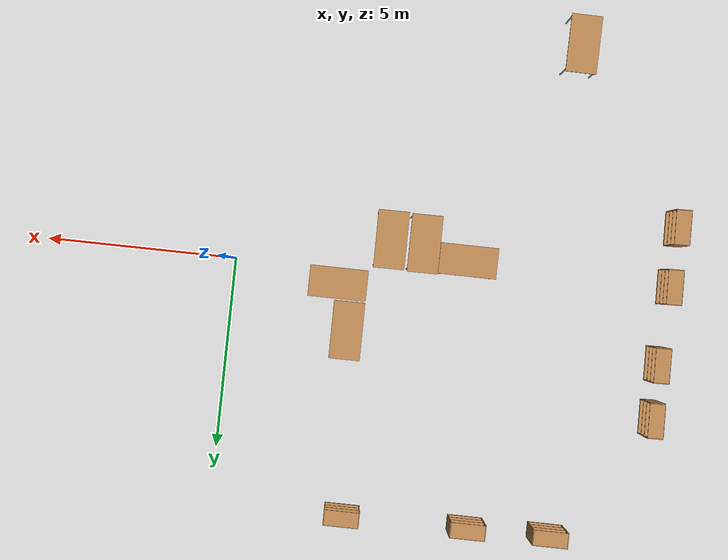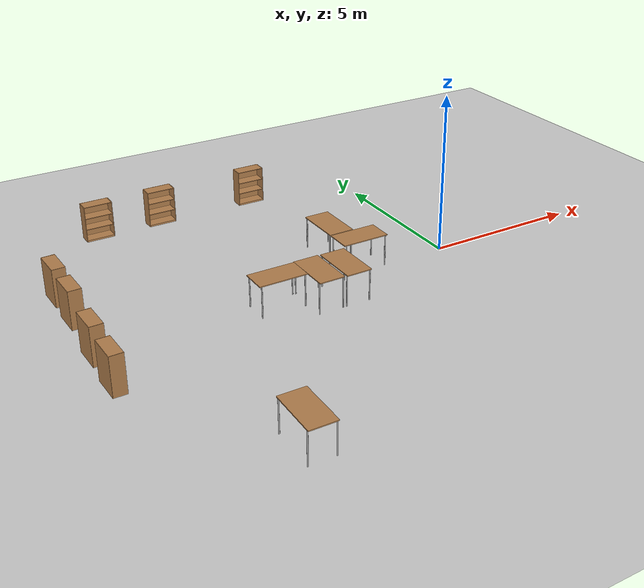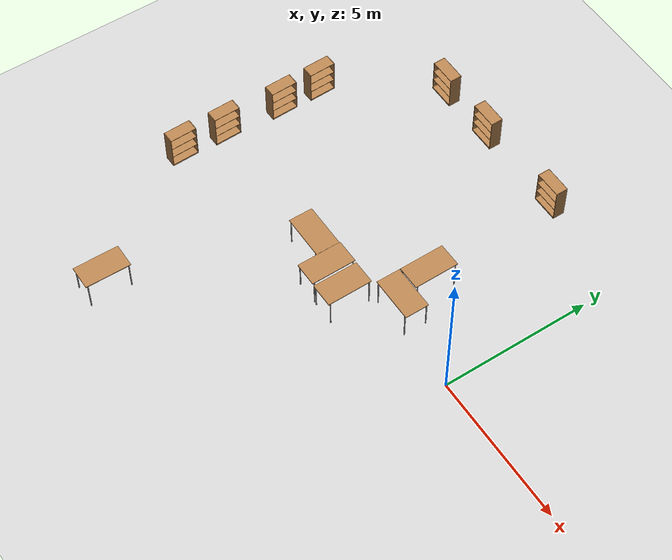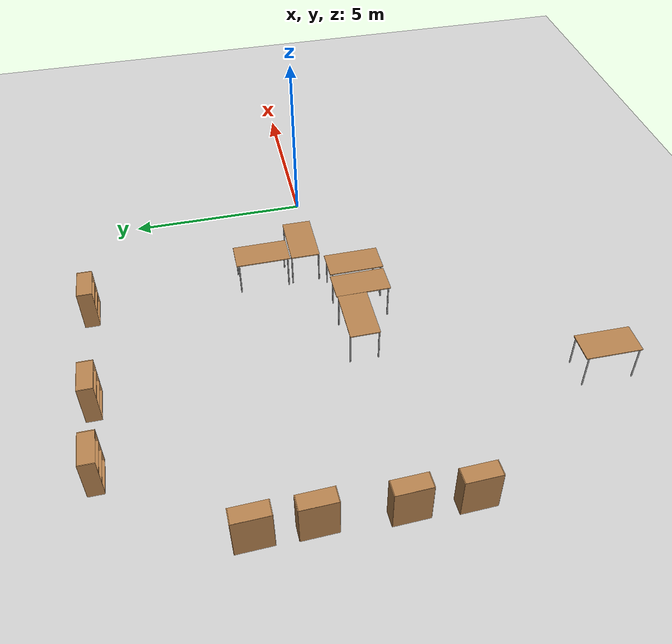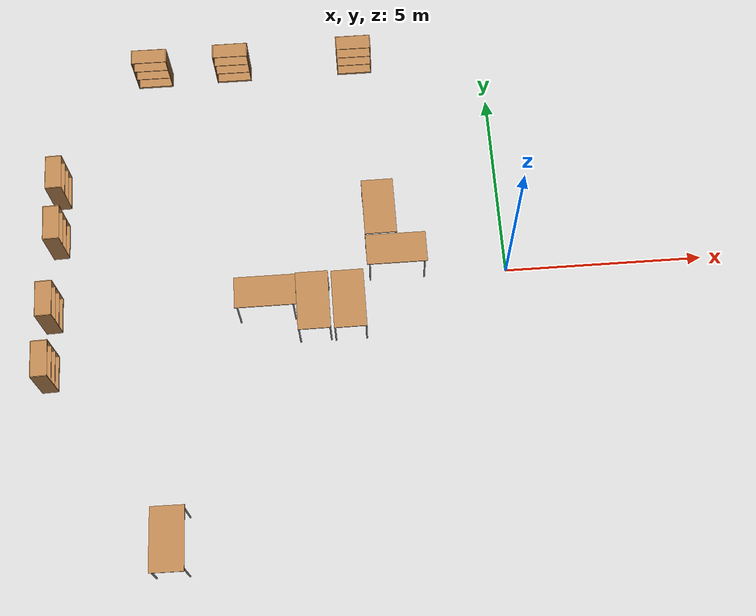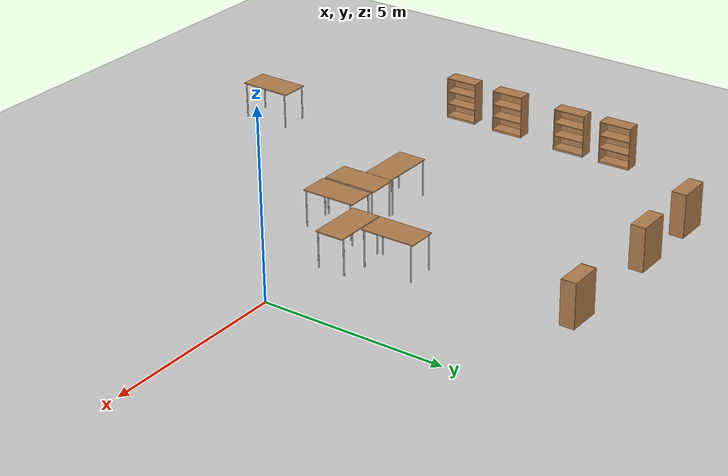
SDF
<sdf version="1.7">
 <world name="default">
  <model name="ground_plane">
   <static>1</static>
   <link name="link">
    <collision name="collision">
     <geometry><plane><normal>0 0 1</normal><size>100 100</size></plane></geometry>
     <surface><friction><ode><mu>100</mu><mu2>50</mu2></ode></friction></surface>
    </collision>
    <visual name="visual">
     <cast_shadows>0</cast_shadows>
     <geometry><plane><normal>0 0 1</normal><size>100 100</size></plane></geometry>
     <material>
      <script><uri>file://media/materials/scripts/gazebo.material</uri><name>Gazebo/Grey</name></script>
     </material>
    </visual>
   </link>
  </model>
  <model name="bookshelf">
   <static>1</static>
   <link name="link">
    <inertial><mass>1</mass></inertial>
    <collision name="back">
     <pose>0 0.005 0.6 0 -0 0</pose>
     <geometry><box><size>0.9 0.01 1.2</size></box></geometry>
    </collision>
    <visual name="visual1">
     <pose>0 0.005 0.6 0 -0 0</pose>
     <geometry><box><size>0.9 0.01 1.2</size></box></geometry>
     <material>
      <script><uri>file://media/materials/scripts/gazebo.material</uri><name>Gazebo/Wood</name></script>
     </material>
    </visual>
    <collision name="left_side">
     <pose>0.45 -0.195 0.6 0 -0 0</pose>
     <geometry><box><size>0.02 0.4 1.2</size></box></geometry>
    </collision>
    <visual name="visual2">
     <pose>0.45 -0.195 0.6 0 -0 0</pose>
     <geometry><box><size>0.02 0.4 1.2</size></box></geometry>
     <material>
      <script><uri>file://media/materials/scripts/gazebo.material</uri><name>Gazebo/Wood</name></script>
     </material>
    </visual>
    <collision name="right_side">
     <pose>-0.45 -0.195 0.6 0 -0 0</pose>
     <geometry><box><size>0.02 0.4 1.2</size></box></geometry>
    </collision>
    <visual name="visual3">
     <pose>-0.45 -0.195 0.6 0 -0 0</pose>
     <geometry><box><size>0.02 0.4 1.2</size></box></geometry>
     <material>
      <script><uri>file://media/materials/scripts/gazebo.material</uri><name>Gazebo/Wood</name></script>
     </material>
    </visual>
    <collision name="bottom">
     <pose>0 -0.195 0.03 0 -0 0</pose>
     <geometry><box><size>0.88 0.4 0.06</size></box></geometry>
    </collision>
    <visual name="visual4">
     <pose>0 -0.195 0.03 0 -0 0</pose>
     <geometry><box><size>0.88 0.4 0.06</size></box></geometry>
     <material>
      <script><uri>file://media/materials/scripts/gazebo.material</uri><name>Gazebo/Wood</name></script>
     </material>
    </visual>
    <collision name="top">
     <pose>0 -0.195 1.19 0 -0 0</pose>
     <geometry><box><size>0.88 0.4 0.02</size></box></geometry>
    </collision>
    <visual name="visual5">
     <pose>0 -0.195 1.19 0 -0 0</pose>
     <geometry><box><size>0.88 0.4 0.02</size></box></geometry>
     <material>
      <script><uri>file://media/materials/scripts/gazebo.material</uri><name>Gazebo/Wood</name></script>
     </material>
    </visual>
    <collision name="low_shelf">
     <pose>0 -0.195 0.43 0 -0 0</pose>
     <geometry><box><size>0.88 0.4 0.02</size></box></geometry>
    </collision>
    <visual name="visual6">
     <pose>0 -0.195 0.43 0 -0 0</pose>
     <geometry><box><size>0.88 0.4 0.02</size></box></geometry>
     <material>
      <script><uri>file://media/materials/scripts/gazebo.material</uri><name>Gazebo/Wood</name></script>
     </material>
    </visual>
    <collision name="high_shelf">
     <pose>0 -0.195 0.8 0 -0 0</pose>
     <geometry><box><size>0.88 0.4 0.02</size></box></geometry>
    </collision>
    <visual name="visual7">
     <pose>0 -0.195 0.8 0 -0 0</pose>
     <geometry><box><size>0.88 0.4 0.02</size></box></geometry>
     <material>
      <script><uri>file://media/materials/scripts/gazebo.material</uri><name>Gazebo/Wood</name></script>
     </material>
    </visual>
   </link>
   <pose>-11.4399 1.57923 0 0 -0 1.59792</pose>
  </model>
  <model name="bookshelf_0">
   <static>1</static>
   <link name="link">
    <inertial><mass>1</mass></inertial>
    <collision name="back">
     <pose>0 0.005 0.6 0 -0 0</pose>
     <geometry><box><size>0.9 0.01 1.2</size></box></geometry>
    </collision>
    <visual name="visual1">
     <pose>0 0.005 0.6 0 -0 0</pose>
     <geometry><box><size>0.9 0.01 1.2</size></box></geometry>
     <material>
      <script><uri>file://media/materials/scripts/gazebo.material</uri><name>Gazebo/Wood</name></script>
     </material>
    </visual>
    <collision name="left_side">
     <pose>0.45 -0.195 0.6 0 -0 0</pose>
     <geometry><box><size>0.02 0.4 1.2</size></box></geometry>
    </collision>
    <visual name="visual2">
     <pose>0.45 -0.195 0.6 0 -0 0</pose>
     <geometry><box><size>0.02 0.4 1.2</size></box></geometry>
     <material>
      <script><uri>file://media/materials/scripts/gazebo.material</uri><name>Gazebo/Wood</name></script>
     </material>
    </visual>
    <collision name="right_side">
     <pose>-0.45 -0.195 0.6 0 -0 0</pose>
     <geometry><box><size>0.02 0.4 1.2</size></box></geometry>
    </collision>
    <visual name="visual3">
     <pose>-0.45 -0.195 0.6 0 -0 0</pose>
     <geometry><box><size>0.02 0.4 1.2</size></box></geometry>
     <material>
      <script><uri>file://media/materials/scripts/gazebo.material</uri><name>Gazebo/Wood</name></script>
     </material>
    </visual>
    <collision name="bottom">
     <pose>0 -0.195 0.03 0 -0 0</pose>
     <geometry><box><size>0.88 0.4 0.06</size></box></geometry>
    </collision>
    <visual name="visual4">
     <pose>0 -0.195 0.03 0 -0 0</pose>
     <geometry><box><size>0.88 0.4 0.06</size></box></geometry>
     <material>
      <script><uri>file://media/materials/scripts/gazebo.material</uri><name>Gazebo/Wood</name></script>
     </material>
    </visual>
    <collision name="top">
     <pose>0 -0.195 1.19 0 -0 0</pose>
     <geometry><box><size>0.88 0.4 0.02</size></box></geometry>
    </collision>
    <visual name="visual5">
     <pose>0 -0.195 1.19 0 -0 0</pose>
     <geometry><box><size>0.88 0.4 0.02</size></box></geometry>
     <material>
      <script><uri>file://media/materials/scripts/gazebo.material</uri><name>Gazebo/Wood</name></script>
     </material>
    </visual>
    <collision name="low_shelf">
     <pose>0 -0.195 0.43 0 -0 0</pose>
     <geometry><box><size>0.88 0.4 0.02</size></box></geometry>
    </collision>
    <visual name="visual6">
     <pose>0 -0.195 0.43 0 -0 0</pose>
     <geometry><box><size>0.88 0.4 0.02</size></box></geometry>
     <material>
      <script><uri>file://media/materials/scripts/gazebo.material</uri><name>Gazebo/Wood</name></script>
     </material>
    </visual>
    <collision name="high_shelf">
     <pose>0 -0.195 0.8 0 -0 0</pose>
     <geometry><box><size>0.88 0.4 0.02</size></box></geometry>
    </collision>
    <visual name="visual7">
     <pose>0 -0.195 0.8 0 -0 0</pose>
     <geometry><box><size>0.88 0.4 0.02</size></box></geometry>
     <material>
      <script><uri>file://media/materials/scripts/gazebo.material</uri><name>Gazebo/Wood</name></script>
     </material>
    </visual>
   </link>
   <pose>-6.73791 6.53013 0 0 -0 0</pose>
  </model>
  <model name="bookshelf_1">
   <static>1</static>
   <link name="link">
    <inertial><mass>1</mass></inertial>
    <collision name="back">
     <pose>0 0.005 0.6 0 -0 0</pose>
     <geometry><box><size>0.9 0.01 1.2</size></box></geometry>
    </collision>
    <visual name="visual1">
     <pose>0 0.005 0.6 0 -0 0</pose>
     <geometry><box><size>0.9 0.01 1.2</size></box></geometry>
     <material>
      <script><uri>file://media/materials/scripts/gazebo.material</uri><name>Gazebo/Wood</name></script>
     </material>
    </visual>
    <collision name="left_side">
     <pose>0.45 -0.195 0.6 0 -0 0</pose>
     <geometry><box><size>0.02 0.4 1.2</size></box></geometry>
    </collision>
    <visual name="visual2">
     <pose>0.45 -0.195 0.6 0 -0 0</pose>
     <geometry><box><size>0.02 0.4 1.2</size></box></geometry>
     <material>
      <script><uri>file://media/materials/scripts/gazebo.material</uri><name>Gazebo/Wood</name></script>
     </material>
    </visual>
    <collision name="right_side">
     <pose>-0.45 -0.195 0.6 0 -0 0</pose>
     <geometry><box><size>0.02 0.4 1.2</size></box></geometry>
    </collision>
    <visual name="visual3">
     <pose>-0.45 -0.195 0.6 0 -0 0</pose>
     <geometry><box><size>0.02 0.4 1.2</size></box></geometry>
     <material>
      <script><uri>file://media/materials/scripts/gazebo.material</uri><name>Gazebo/Wood</name></script>
     </material>
    </visual>
    <collision name="bottom">
     <pose>0 -0.195 0.03 0 -0 0</pose>
     <geometry><box><size>0.88 0.4 0.06</size></box></geometry>
    </collision>
    <visual name="visual4">
     <pose>0 -0.195 0.03 0 -0 0</pose>
     <geometry><box><size>0.88 0.4 0.06</size></box></geometry>
     <material>
      <script><uri>file://media/materials/scripts/gazebo.material</uri><name>Gazebo/Wood</name></script>
     </material>
    </visual>
    <collision name="top">
     <pose>0 -0.195 1.19 0 -0 0</pose>
     <geometry><box><size>0.88 0.4 0.02</size></box></geometry>
    </collision>
    <visual name="visual5">
     <pose>0 -0.195 1.19 0 -0 0</pose>
     <geometry><box><size>0.88 0.4 0.02</size></box></geometry>
     <material>
      <script><uri>file://media/materials/scripts/gazebo.material</uri><name>Gazebo/Wood</name></script>
     </material>
    </visual>
    <collision name="low_shelf">
     <pose>0 -0.195 0.43 0 -0 0</pose>
     <geometry><box><size>0.88 0.4 0.02</size></box></geometry>
    </collision>
    <visual name="visual6">
     <pose>0 -0.195 0.43 0 -0 0</pose>
     <geometry><box><size>0.88 0.4 0.02</size></box></geometry>
     <material>
      <script><uri>file://media/materials/scripts/gazebo.material</uri><name>Gazebo/Wood</name></script>
     </material>
    </visual>
    <collision name="high_shelf">
     <pose>0 -0.195 0.8 0 -0 0</pose>
     <geometry><box><size>0.88 0.4 0.02</size></box></geometry>
    </collision>
    <visual name="visual7">
     <pose>0 -0.195 0.8 0 -0 0</pose>
     <geometry><box><size>0.88 0.4 0.02</size></box></geometry>
     <material>
      <script><uri>file://media/materials/scripts/gazebo.material</uri><name>Gazebo/Wood</name></script>
     </material>
    </visual>
   </link>
   <pose>-8.86607 6.49565 0 0 -0 0</pose>
  </model>
  <model name="bookshelf_2">
   <static>1</static>
   <link name="link">
    <inertial><mass>1</mass></inertial>
    <collision name="back">
     <pose>0 0.005 0.6 0 -0 0</pose>
     <geometry><box><size>0.9 0.01 1.2</size></box></geometry>
    </collision>
    <visual name="visual1">
     <pose>0 0.005 0.6 0 -0 0</pose>
     <geometry><box><size>0.9 0.01 1.2</size></box></geometry>
     <material>
      <script><uri>file://media/materials/scripts/gazebo.material</uri><name>Gazebo/Wood</name></script>
     </material>
    </visual>
    <collision name="left_side">
     <pose>0.45 -0.195 0.6 0 -0 0</pose>
     <geometry><box><size>0.02 0.4 1.2</size></box></geometry>
    </collision>
    <visual name="visual2">
     <pose>0.45 -0.195 0.6 0 -0 0</pose>
     <geometry><box><size>0.02 0.4 1.2</size></box></geometry>
     <material>
      <script><uri>file://media/materials/scripts/gazebo.material</uri><name>Gazebo/Wood</name></script>
     </material>
    </visual>
    <collision name="right_side">
     <pose>-0.45 -0.195 0.6 0 -0 0</pose>
     <geometry><box><size>0.02 0.4 1.2</size></box></geometry>
    </collision>
    <visual name="visual3">
     <pose>-0.45 -0.195 0.6 0 -0 0</pose>
     <geometry><box><size>0.02 0.4 1.2</size></box></geometry>
     <material>
      <script><uri>file://media/materials/scripts/gazebo.material</uri><name>Gazebo/Wood</name></script>
     </material>
    </visual>
    <collision name="bottom">
     <pose>0 -0.195 0.03 0 -0 0</pose>
     <geometry><box><size>0.88 0.4 0.06</size></box></geometry>
    </collision>
    <visual name="visual4">
     <pose>0 -0.195 0.03 0 -0 0</pose>
     <geometry><box><size>0.88 0.4 0.06</size></box></geometry>
     <material>
      <script><uri>file://media/materials/scripts/gazebo.material</uri><name>Gazebo/Wood</name></script>
     </material>
    </visual>
    <collision name="top">
     <pose>0 -0.195 1.19 0 -0 0</pose>
     <geometry><box><size>0.88 0.4 0.02</size></box></geometry>
    </collision>
    <visual name="visual5">
     <pose>0 -0.195 1.19 0 -0 0</pose>
     <geometry><box><size>0.88 0.4 0.02</size></box></geometry>
     <material>
      <script><uri>file://media/materials/scripts/gazebo.material</uri><name>Gazebo/Wood</name></script>
     </material>
    </visual>
    <collision name="low_shelf">
     <pose>0 -0.195 0.43 0 -0 0</pose>
     <geometry><box><size>0.88 0.4 0.02</size></box></geometry>
    </collision>
    <visual name="visual6">
     <pose>0 -0.195 0.43 0 -0 0</pose>
     <geometry><box><size>0.88 0.4 0.02</size></box></geometry>
     <material>
      <script><uri>file://media/materials/scripts/gazebo.material</uri><name>Gazebo/Wood</name></script>
     </material>
    </visual>
    <collision name="high_shelf">
     <pose>0 -0.195 0.8 0 -0 0</pose>
     <geometry><box><size>0.88 0.4 0.02</size></box></geometry>
    </collision>
    <visual name="visual7">
     <pose>0 -0.195 0.8 0 -0 0</pose>
     <geometry><box><size>0.88 0.4 0.02</size></box></geometry>
     <material>
      <script><uri>file://media/materials/scripts/gazebo.material</uri><name>Gazebo/Wood</name></script>
     </material>
    </visual>
   </link>
   <pose>-3.47886 6.55384 0 0 -0 0</pose>
  </model>
  <model name="table">
   <static>1</static>
   <link name="link">
    <collision name="surface">
     <pose>0 0 1 0 -0 0</pose>
     <geometry><box><size>1.5 0.8 0.03</size></box></geometry>
     <surface><friction><ode><mu>0.6</mu><mu2>0.6</mu2></ode></friction></surface>
    </collision>
    <visual name="visual1">
     <pose>0 0 1 0 -0 0</pose>
     <geometry><box><size>1.5 0.8 0.03</size></box></geometry>
     <material>
      <script><uri>file://media/materials/scripts/gazebo.material</uri><name>Gazebo/Wood</name></script>
     </material>
    </visual>
    <collision name="front_left_leg">
     <pose>0.68 0.38 0.5 0 -0 0</pose>
     <geometry><cylinder><radius>0.02</radius><length>1</length></cylinder></geometry>
    </collision>
    <visual name="front_left_leg">
     <pose>0.68 0.38 0.5 0 -0 0</pose>
     <geometry><cylinder><radius>0.02</radius><length>1</length></cylinder></geometry>
     <material>
      <script><uri>file://media/materials/scripts/gazebo.material</uri><name>Gazebo/Grey</name></script>
     </material>
    </visual>
    <collision name="front_right_leg">
     <pose>0.68 -0.38 0.5 0 -0 0</pose>
     <geometry><cylinder><radius>0.02</radius><length>1</length></cylinder></geometry>
    </collision>
    <visual name="front_right_leg">
     <pose>0.68 -0.38 0.5 0 -0 0</pose>
     <geometry><cylinder><radius>0.02</radius><length>1</length></cylinder></geometry>
     <material>
      <script><uri>file://media/materials/scripts/gazebo.material</uri><name>Gazebo/Grey</name></script>
     </material>
    </visual>
    <collision name="back_right_leg">
     <pose>-0.68 -0.38 0.5 0 -0 0</pose>
     <geometry><cylinder><radius>0.02</radius><length>1</length></cylinder></geometry>
    </collision>
    <visual name="back_right_leg">
     <pose>-0.68 -0.38 0.5 0 -0 0</pose>
     <geometry><cylinder><radius>0.02</radius><length>1</length></cylinder></geometry>
     <material>
      <script><uri>file://media/materials/scripts/gazebo.material</uri><name>Gazebo/Grey</name></script>
     </material>
    </visual>
    <collision name="back_left_leg">
     <pose>-0.68 0.38 0.5 0 -0 0</pose>
     <geometry><cylinder><radius>0.02</radius><length>1</length></cylinder></geometry>
    </collision>
    <visual name="back_left_leg">
     <pose>-0.68 0.38 0.5 0 -0 0</pose>
     <geometry><cylinder><radius>0.02</radius><length>1</length></cylinder></geometry>
     <material>
      <script><uri>file://media/materials/scripts/gazebo.material</uri><name>Gazebo/Grey</name></script>
     </material>
    </visual>
   </link>
   <pose>-6.03137 -0.564035 0 0 -0 0</pose>
  </model>
  <model name="table_clone">
   <static>1</static>
   <link name="link">
    <collision name="surface">
     <pose>0 0 1 0 -0 0</pose>
     <geometry><box><size>1.5 0.8 0.03</size></box></geometry>
     <surface><friction><ode><mu>0.6</mu><mu2>0.6</mu2></ode></friction></surface>
    </collision>
    <visual name="visual1">
     <pose>0 0 1 0 -0 0</pose>
     <geometry><box><size>1.5 0.8 0.03</size></box></geometry>
     <material>
      <script><uri>file://media/materials/scripts/gazebo.material</uri><name>Gazebo/Wood</name></script>
     </material>
    </visual>
    <collision name="front_left_leg">
     <pose>0.68 0.38 0.5 0 -0 0</pose>
     <geometry><cylinder><radius>0.02</radius><length>1</length></cylinder></geometry>
    </collision>
    <visual name="front_left_leg">
     <pose>0.68 0.38 0.5 0 -0 0</pose>
     <geometry><cylinder><radius>0.02</radius><length>1</length></cylinder></geometry>
     <material>
      <script><uri>file://media/materials/scripts/gazebo.material</uri><name>Gazebo/Grey</name></script>
     </material>
    </visual>
    <collision name="front_right_leg">
     <pose>0.68 -0.38 0.5 0 -0 0</pose>
     <geometry><cylinder><radius>0.02</radius><length>1</length></cylinder></geometry>
    </collision>
    <visual name="front_right_leg">
     <pose>0.68 -0.38 0.5 0 -0 0</pose>
     <geometry><cylinder><radius>0.02</radius><length>1</length></cylinder></geometry>
     <material>
      <script><uri>file://media/materials/scripts/gazebo.material</uri><name>Gazebo/Grey</name></script>
     </material>
    </visual>
    <collision name="back_right_leg">
     <pose>-0.68 -0.38 0.5 0 -0 0</pose>
     <geometry><cylinder><radius>0.02</radius><length>1</length></cylinder></geometry>
    </collision>
    <visual name="back_right_leg">
     <pose>-0.68 -0.38 0.5 0 -0 0</pose>
     <geometry><cylinder><radius>0.02</radius><length>1</length></cylinder></geometry>
     <material>
      <script><uri>file://media/materials/scripts/gazebo.material</uri><name>Gazebo/Grey</name></script>
     </material>
    </visual>
    <collision name="back_left_leg">
     <pose>-0.68 0.38 0.5 0 -0 0</pose>
     <geometry><cylinder><radius>0.02</radius><length>1</length></cylinder></geometry>
    </collision>
    <visual name="back_left_leg">
     <pose>-0.68 0.38 0.5 0 -0 0</pose>
     <geometry><cylinder><radius>0.02</radius><length>1</length></cylinder></geometry>
     <material>
      <script><uri>file://media/materials/scripts/gazebo.material</uri><name>Gazebo/Grey</name></script>
     </material>
    </visual>
   </link>
   <pose>-3.10998 1.54943 0 0 0 -1.56352</pose>
  </model>
  <model name="table_clone_0">
   <static>1</static>
   <link name="link">
    <collision name="surface">
     <pose>0 0 1 0 -0 0</pose>
     <geometry><box><size>1.5 0.8 0.03</size></box></geometry>
     <surface><friction><ode><mu>0.6</mu><mu2>0.6</mu2></ode></friction></surface>
    </collision>
    <visual name="visual1">
     <pose>0 0 1 0 -0 0</pose>
     <geometry><box><size>1.5 0.8 0.03</size></box></geometry>
     <material>
      <script><uri>file://media/materials/scripts/gazebo.material</uri><name>Gazebo/Wood</name></script>
     </material>
    </visual>
    <collision name="front_left_leg">
     <pose>0.68 0.38 0.5 0 -0 0</pose>
     <geometry><cylinder><radius>0.02</radius><length>1</length></cylinder></geometry>
    </collision>
    <visual name="front_left_leg">
     <pose>0.68 0.38 0.5 0 -0 0</pose>
     <geometry><cylinder><radius>0.02</radius><length>1</length></cylinder></geometry>
     <material>
      <script><uri>file://media/materials/scripts/gazebo.material</uri><name>Gazebo/Grey</name></script>
     </material>
    </visual>
    <collision name="front_right_leg">
     <pose>0.68 -0.38 0.5 0 -0 0</pose>
     <geometry><cylinder><radius>0.02</radius><length>1</length></cylinder></geometry>
    </collision>
    <visual name="front_right_leg">
     <pose>0.68 -0.38 0.5 0 -0 0</pose>
     <geometry><cylinder><radius>0.02</radius><length>1</length></cylinder></geometry>
     <material>
      <script><uri>file://media/materials/scripts/gazebo.material</uri><name>Gazebo/Grey</name></script>
     </material>
    </visual>
    <collision name="back_right_leg">
     <pose>-0.68 -0.38 0.5 0 -0 0</pose>
     <geometry><cylinder><radius>0.02</radius><length>1</length></cylinder></geometry>
    </collision>
    <visual name="back_right_leg">
     <pose>-0.68 -0.38 0.5 0 -0 0</pose>
     <geometry><cylinder><radius>0.02</radius><length>1</length></cylinder></geometry>
     <material>
      <script><uri>file://media/materials/scripts/gazebo.material</uri><name>Gazebo/Grey</name></script>
     </material>
    </visual>
    <collision name="back_left_leg">
     <pose>-0.68 0.38 0.5 0 -0 0</pose>
     <geometry><cylinder><radius>0.02</radius><length>1</length></cylinder></geometry>
    </collision>
    <visual name="back_left_leg">
     <pose>-0.68 0.38 0.5 0 -0 0</pose>
     <geometry><cylinder><radius>0.02</radius><length>1</length></cylinder></geometry>
     <material>
      <script><uri>file://media/materials/scripts/gazebo.material</uri><name>Gazebo/Grey</name></script>
     </material>
    </visual>
   </link>
   <pose>-2.75473 0.361404 0 0 -0 0</pose>
  </model>
  <model name="table_clone_1">
   <static>1</static>
   <link name="link">
    <collision name="surface">
     <pose>0 0 1 0 -0 0</pose>
     <geometry><box><size>1.5 0.8 0.03</size></box></geometry>
     <surface><friction><ode><mu>0.6</mu><mu2>0.6</mu2></ode></friction></surface>
    </collision>
    <visual name="visual1">
     <pose>0 0 1 0 -0 0</pose>
     <geometry><box><size>1.5 0.8 0.03</size></box></geometry>
     <material>
      <script><uri>file://media/materials/scripts/gazebo.material</uri><name>Gazebo/Wood</name></script>
     </material>
    </visual>
    <collision name="front_left_leg">
     <pose>0.68 0.38 0.5 0 -0 0</pose>
     <geometry><cylinder><radius>0.02</radius><length>1</length></cylinder></geometry>
    </collision>
    <visual name="front_left_leg">
     <pose>0.68 0.38 0.5 0 -0 0</pose>
     <geometry><cylinder><radius>0.02</radius><length>1</length></cylinder></geometry>
     <material>
      <script><uri>file://media/materials/scripts/gazebo.material</uri><name>Gazebo/Grey</name></script>
     </material>
    </visual>
    <collision name="front_right_leg">
     <pose>0.68 -0.38 0.5 0 -0 0</pose>
     <geometry><cylinder><radius>0.02</radius><length>1</length></cylinder></geometry>
    </collision>
    <visual name="front_right_leg">
     <pose>0.68 -0.38 0.5 0 -0 0</pose>
     <geometry><cylinder><radius>0.02</radius><length>1</length></cylinder></geometry>
     <material>
      <script><uri>file://media/materials/scripts/gazebo.material</uri><name>Gazebo/Grey</name></script>
     </material>
    </visual>
    <collision name="back_right_leg">
     <pose>-0.68 -0.38 0.5 0 -0 0</pose>
     <geometry><cylinder><radius>0.02</radius><length>1</length></cylinder></geometry>
    </collision>
    <visual name="back_right_leg">
     <pose>-0.68 -0.38 0.5 0 -0 0</pose>
     <geometry><cylinder><radius>0.02</radius><length>1</length></cylinder></geometry>
     <material>
      <script><uri>file://media/materials/scripts/gazebo.material</uri><name>Gazebo/Grey</name></script>
     </material>
    </visual>
    <collision name="back_left_leg">
     <pose>-0.68 0.38 0.5 0 -0 0</pose>
     <geometry><cylinder><radius>0.02</radius><length>1</length></cylinder></geometry>
    </collision>
    <visual name="back_left_leg">
     <pose>-0.68 0.38 0.5 0 -0 0</pose>
     <geometry><cylinder><radius>0.02</radius><length>1</length></cylinder></geometry>
     <material>
      <script><uri>file://media/materials/scripts/gazebo.material</uri><name>Gazebo/Grey</name></script>
     </material>
    </visual>
   </link>
   <pose>-8.39684 -6.4335 0 0 0 -1.582</pose>
  </model>
  <model name="bookshelf_clone_2">
   <static>1</static>
   <link name="link">
    <inertial><mass>1</mass></inertial>
    <collision name="back">
     <pose>0 0.005 0.6 0 -0 0</pose>
     <geometry><box><size>0.9 0.01 1.2</size></box></geometry>
    </collision>
    <visual name="visual1">
     <pose>0 0.005 0.6 0 -0 0</pose>
     <geometry><box><size>0.9 0.01 1.2</size></box></geometry>
     <material>
      <script><uri>file://media/materials/scripts/gazebo.material</uri><name>Gazebo/Wood</name></script>
     </material>
    </visual>
    <collision name="left_side">
     <pose>0.45 -0.195 0.6 0 -0 0</pose>
     <geometry><box><size>0.02 0.4 1.2</size></box></geometry>
    </collision>
    <visual name="visual2">
     <pose>0.45 -0.195 0.6 0 -0 0</pose>
     <geometry><box><size>0.02 0.4 1.2</size></box></geometry>
     <material>
      <script><uri>file://media/materials/scripts/gazebo.material</uri><name>Gazebo/Wood</name></script>
     </material>
    </visual>
    <collision name="right_side">
     <pose>-0.45 -0.195 0.6 0 -0 0</pose>
     <geometry><box><size>0.02 0.4 1.2</size></box></geometry>
    </collision>
    <visual name="visual3">
     <pose>-0.45 -0.195 0.6 0 -0 0</pose>
     <geometry><box><size>0.02 0.4 1.2</size></box></geometry>
     <material>
      <script><uri>file://media/materials/scripts/gazebo.material</uri><name>Gazebo/Wood</name></script>
     </material>
    </visual>
    <collision name="bottom">
     <pose>0 -0.195 0.03 0 -0 0</pose>
     <geometry><box><size>0.88 0.4 0.06</size></box></geometry>
    </collision>
    <visual name="visual4">
     <pose>0 -0.195 0.03 0 -0 0</pose>
     <geometry><box><size>0.88 0.4 0.06</size></box></geometry>
     <material>
      <script><uri>file://media/materials/scripts/gazebo.material</uri><name>Gazebo/Wood</name></script>
     </material>
    </visual>
    <collision name="top">
     <pose>0 -0.195 1.19 0 -0 0</pose>
     <geometry><box><size>0.88 0.4 0.02</size></box></geometry>
    </collision>
    <visual name="visual5">
     <pose>0 -0.195 1.19 0 -0 0</pose>
     <geometry><box><size>0.88 0.4 0.02</size></box></geometry>
     <material>
      <script><uri>file://media/materials/scripts/gazebo.material</uri><name>Gazebo/Wood</name></script>
     </material>
    </visual>
    <collision name="low_shelf">
     <pose>0 -0.195 0.43 0 -0 0</pose>
     <geometry><box><size>0.88 0.4 0.02</size></box></geometry>
    </collision>
    <visual name="visual6">
     <pose>0 -0.195 0.43 0 -0 0</pose>
     <geometry><box><size>0.88 0.4 0.02</size></box></geometry>
     <material>
      <script><uri>file://media/materials/scripts/gazebo.material</uri><name>Gazebo/Wood</name></script>
     </material>
    </visual>
    <collision name="high_shelf">
     <pose>0 -0.195 0.8 0 -0 0</pose>
     <geometry><box><size>0.88 0.4 0.02</size></box></geometry>
    </collision>
    <visual name="visual7">
     <pose>0 -0.195 0.8 0 -0 0</pose>
     <geometry><box><size>0.88 0.4 0.02</size></box></geometry>
     <material>
      <script><uri>file://media/materials/scripts/gazebo.material</uri><name>Gazebo/Wood</name></script>
     </material>
    </visual>
   </link>
   <pose>-11.4357 3 0 0 -0 1.59792</pose>
  </model>
  <model name="bookshelf_clone_3">
   <static>1</static>
   <link name="link">
    <inertial><mass>1</mass></inertial>
    <collision name="back">
     <pose>0 0.005 0.6 0 -0 0</pose>
     <geometry><box><size>0.9 0.01 1.2</size></box></geometry>
    </collision>
    <visual name="visual1">
     <pose>0 0.005 0.6 0 -0 0</pose>
     <geometry><box><size>0.9 0.01 1.2</size></box></geometry>
     <material>
      <script><uri>file://media/materials/scripts/gazebo.material</uri><name>Gazebo/Wood</name></script>
     </material>
    </visual>
    <collision name="left_side">
     <pose>0.45 -0.195 0.6 0 -0 0</pose>
     <geometry><box><size>0.02 0.4 1.2</size></box></geometry>
    </collision>
    <visual name="visual2">
     <pose>0.45 -0.195 0.6 0 -0 0</pose>
     <geometry><box><size>0.02 0.4 1.2</size></box></geometry>
     <material>
      <script><uri>file://media/materials/scripts/gazebo.material</uri><name>Gazebo/Wood</name></script>
     </material>
    </visual>
    <collision name="right_side">
     <pose>-0.45 -0.195 0.6 0 -0 0</pose>
     <geometry><box><size>0.02 0.4 1.2</size></box></geometry>
    </collision>
    <visual name="visual3">
     <pose>-0.45 -0.195 0.6 0 -0 0</pose>
     <geometry><box><size>0.02 0.4 1.2</size></box></geometry>
     <material>
      <script><uri>file://media/materials/scripts/gazebo.material</uri><name>Gazebo/Wood</name></script>
     </material>
    </visual>
    <collision name="bottom">
     <pose>0 -0.195 0.03 0 -0 0</pose>
     <geometry><box><size>0.88 0.4 0.06</size></box></geometry>
    </collision>
    <visual name="visual4">
     <pose>0 -0.195 0.03 0 -0 0</pose>
     <geometry><box><size>0.88 0.4 0.06</size></box></geometry>
     <material>
      <script><uri>file://media/materials/scripts/gazebo.material</uri><name>Gazebo/Wood</name></script>
     </material>
    </visual>
    <collision name="top">
     <pose>0 -0.195 1.19 0 -0 0</pose>
     <geometry><box><size>0.88 0.4 0.02</size></box></geometry>
    </collision>
    <visual name="visual5">
     <pose>0 -0.195 1.19 0 -0 0</pose>
     <geometry><box><size>0.88 0.4 0.02</size></box></geometry>
     <material>
      <script><uri>file://media/materials/scripts/gazebo.material</uri><name>Gazebo/Wood</name></script>
     </material>
    </visual>
    <collision name="low_shelf">
     <pose>0 -0.195 0.43 0 -0 0</pose>
     <geometry><box><size>0.88 0.4 0.02</size></box></geometry>
    </collision>
    <visual name="visual6">
     <pose>0 -0.195 0.43 0 -0 0</pose>
     <geometry><box><size>0.88 0.4 0.02</size></box></geometry>
     <material>
      <script><uri>file://media/materials/scripts/gazebo.material</uri><name>Gazebo/Wood</name></script>
     </material>
    </visual>
    <collision name="high_shelf">
     <pose>0 -0.195 0.8 0 -0 0</pose>
     <geometry><box><size>0.88 0.4 0.02</size></box></geometry>
    </collision>
    <visual name="visual7">
     <pose>0 -0.195 0.8 0 -0 0</pose>
     <geometry><box><size>0.88 0.4 0.02</size></box></geometry>
     <material>
      <script><uri>file://media/materials/scripts/gazebo.material</uri><name>Gazebo/Wood</name></script>
     </material>
    </visual>
   </link>
   <pose>-11.5445 -0.4554 0 0 -0 1.59792</pose>
  </model>
  <model name="bookshelf_clone_4">
   <static>1</static>
   <link name="link">
    <inertial><mass>1</mass></inertial>
    <collision name="back">
     <pose>0 0.005 0.6 0 -0 0</pose>
     <geometry><box><size>0.9 0.01 1.2</size></box></geometry>
    </collision>
    <visual name="visual1">
     <pose>0 0.005 0.6 0 -0 0</pose>
     <geometry><box><size>0.9 0.01 1.2</size></box></geometry>
     <material>
      <script><uri>file://media/materials/scripts/gazebo.material</uri><name>Gazebo/Wood</name></script>
     </material>
    </visual>
    <collision name="left_side">
     <pose>0.45 -0.195 0.6 0 -0 0</pose>
     <geometry><box><size>0.02 0.4 1.2</size></box></geometry>
    </collision>
    <visual name="visual2">
     <pose>0.45 -0.195 0.6 0 -0 0</pose>
     <geometry><box><size>0.02 0.4 1.2</size></box></geometry>
     <material>
      <script><uri>file://media/materials/scripts/gazebo.material</uri><name>Gazebo/Wood</name></script>
     </material>
    </visual>
    <collision name="right_side">
     <pose>-0.45 -0.195 0.6 0 -0 0</pose>
     <geometry><box><size>0.02 0.4 1.2</size></box></geometry>
    </collision>
    <visual name="visual3">
     <pose>-0.45 -0.195 0.6 0 -0 0</pose>
     <geometry><box><size>0.02 0.4 1.2</size></box></geometry>
     <material>
      <script><uri>file://media/materials/scripts/gazebo.material</uri><name>Gazebo/Wood</name></script>
     </material>
    </visual>
    <collision name="bottom">
     <pose>0 -0.195 0.03 0 -0 0</pose>
     <geometry><box><size>0.88 0.4 0.06</size></box></geometry>
    </collision>
    <visual name="visual4">
     <pose>0 -0.195 0.03 0 -0 0</pose>
     <geometry><box><size>0.88 0.4 0.06</size></box></geometry>
     <material>
      <script><uri>file://media/materials/scripts/gazebo.material</uri><name>Gazebo/Wood</name></script>
     </material>
    </visual>
    <collision name="top">
     <pose>0 -0.195 1.19 0 -0 0</pose>
     <geometry><box><size>0.88 0.4 0.02</size></box></geometry>
    </collision>
    <visual name="visual5">
     <pose>0 -0.195 1.19 0 -0 0</pose>
     <geometry><box><size>0.88 0.4 0.02</size></box></geometry>
     <material>
      <script><uri>file://media/materials/scripts/gazebo.material</uri><name>Gazebo/Wood</name></script>
     </material>
    </visual>
    <collision name="low_shelf">
     <pose>0 -0.195 0.43 0 -0 0</pose>
     <geometry><box><size>0.88 0.4 0.02</size></box></geometry>
    </collision>
    <visual name="visual6">
     <pose>0 -0.195 0.43 0 -0 0</pose>
     <geometry><box><size>0.88 0.4 0.02</size></box></geometry>
     <material>
      <script><uri>file://media/materials/scripts/gazebo.material</uri><name>Gazebo/Wood</name></script>
     </material>
    </visual>
    <collision name="high_shelf">
     <pose>0 -0.195 0.8 0 -0 0</pose>
     <geometry><box><size>0.88 0.4 0.02</size></box></geometry>
    </collision>
    <visual name="visual7">
     <pose>0 -0.195 0.8 0 -0 0</pose>
     <geometry><box><size>0.88 0.4 0.02</size></box></geometry>
     <material>
      <script><uri>file://media/materials/scripts/gazebo.material</uri><name>Gazebo/Wood</name></script>
     </material>
    </visual>
   </link>
   <pose>-11.5844 -2 0 0 -0 1.59792</pose>
  </model>
  <model name="table_clone_clone">
   <static>1</static>
   <link name="link">
    <collision name="surface">
     <pose>0 0 1 0 -0 0</pose>
     <geometry><box><size>1.5 0.8 0.03</size></box></geometry>
     <surface><friction><ode><mu>0.6</mu><mu2>0.6</mu2></ode></friction></surface>
    </collision>
    <visual name="visual1">
     <pose>0 0 1 0 -0 0</pose>
     <geometry><box><size>1.5 0.8 0.03</size></box></geometry>
     <material>
      <script><uri>file://media/materials/scripts/gazebo.material</uri><name>Gazebo/Wood</name></script>
     </material>
    </visual>
    <collision name="front_left_leg">
     <pose>0.68 0.38 0.5 0 -0 0</pose>
     <geometry><cylinder><radius>0.02</radius><length>1</length></cylinder></geometry>
    </collision>
    <visual name="front_left_leg">
     <pose>0.68 0.38 0.5 0 -0 0</pose>
     <geometry><cylinder><radius>0.02</radius><length>1</length></cylinder></geometry>
     <material>
      <script><uri>file://media/materials/scripts/gazebo.material</uri><name>Gazebo/Grey</name></script>
     </material>
    </visual>
    <collision name="front_right_leg">
     <pose>0.68 -0.38 0.5 0 -0 0</pose>
     <geometry><cylinder><radius>0.02</radius><length>1</length></cylinder></geometry>
    </collision>
    <visual name="front_right_leg">
     <pose>0.68 -0.38 0.5 0 -0 0</pose>
     <geometry><cylinder><radius>0.02</radius><length>1</length></cylinder></geometry>
     <material>
      <script><uri>file://media/materials/scripts/gazebo.material</uri><name>Gazebo/Grey</name></script>
     </material>
    </visual>
    <collision name="back_right_leg">
     <pose>-0.68 -0.38 0.5 0 -0 0</pose>
     <geometry><cylinder><radius>0.02</radius><length>1</length></cylinder></geometry>
    </collision>
    <visual name="back_right_leg">
     <pose>-0.68 -0.38 0.5 0 -0 0</pose>
     <geometry><cylinder><radius>0.02</radius><length>1</length></cylinder></geometry>
     <material>
      <script><uri>file://media/materials/scripts/gazebo.material</uri><name>Gazebo/Grey</name></script>
     </material>
    </visual>
    <collision name="back_left_leg">
     <pose>-0.68 0.38 0.5 0 -0 0</pose>
     <geometry><cylinder><radius>0.02</radius><length>1</length></cylinder></geometry>
    </collision>
    <visual name="back_left_leg">
     <pose>-0.68 0.38 0.5 0 -0 0</pose>
     <geometry><cylinder><radius>0.02</radius><length>1</length></cylinder></geometry>
     <material>
      <script><uri>file://media/materials/scripts/gazebo.material</uri><name>Gazebo/Grey</name></script>
     </material>
    </visual>
   </link>
   <pose>-4.003 -0.896875 0 0 0 -1.56352</pose>
  </model>
  <model name="table_clone_clone_0">
   <static>1</static>
   <link name="link">
    <collision name="surface">
     <pose>0 0 1 0 -0 0</pose>
     <geometry><box><size>1.5 0.8 0.03</size></box></geometry>
     <surface><friction><ode><mu>0.6</mu><mu2>0.6</mu2></ode></friction></surface>
    </collision>
    <visual name="visual1">
     <pose>0 0 1 0 -0 0</pose>
     <geometry><box><size>1.5 0.8 0.03</size></box></geometry>
     <material>
      <script><uri>file://media/materials/scripts/gazebo.material</uri><name>Gazebo/Wood</name></script>
     </material>
    </visual>
    <collision name="front_left_leg">
     <pose>0.68 0.38 0.5 0 -0 0</pose>
     <geometry><cylinder><radius>0.02</radius><length>1</length></cylinder></geometry>
    </collision>
    <visual name="front_left_leg">
     <pose>0.68 0.38 0.5 0 -0 0</pose>
     <geometry><cylinder><radius>0.02</radius><length>1</length></cylinder></geometry>
     <material>
      <script><uri>file://media/materials/scripts/gazebo.material</uri><name>Gazebo/Grey</name></script>
     </material>
    </visual>
    <collision name="front_right_leg">
     <pose>0.68 -0.38 0.5 0 -0 0</pose>
     <geometry><cylinder><radius>0.02</radius><length>1</length></cylinder></geometry>
    </collision>
    <visual name="front_right_leg">
     <pose>0.68 -0.38 0.5 0 -0 0</pose>
     <geometry><cylinder><radius>0.02</radius><length>1</length></cylinder></geometry>
     <material>
      <script><uri>file://media/materials/scripts/gazebo.material</uri><name>Gazebo/Grey</name></script>
     </material>
    </visual>
    <collision name="back_right_leg">
     <pose>-0.68 -0.38 0.5 0 -0 0</pose>
     <geometry><cylinder><radius>0.02</radius><length>1</length></cylinder></geometry>
    </collision>
    <visual name="back_right_leg">
     <pose>-0.68 -0.38 0.5 0 -0 0</pose>
     <geometry><cylinder><radius>0.02</radius><length>1</length></cylinder></geometry>
     <material>
      <script><uri>file://media/materials/scripts/gazebo.material</uri><name>Gazebo/Grey</name></script>
     </material>
    </visual>
    <collision name="back_left_leg">
     <pose>-0.68 0.38 0.5 0 -0 0</pose>
     <geometry><cylinder><radius>0.02</radius><length>1</length></cylinder></geometry>
    </collision>
    <visual name="back_left_leg">
     <pose>-0.68 0.38 0.5 0 -0 0</pose>
     <geometry><cylinder><radius>0.02</radius><length>1</length></cylinder></geometry>
     <material>
      <script><uri>file://media/materials/scripts/gazebo.material</uri><name>Gazebo/Grey</name></script>
     </material>
    </visual>
   </link>
   <pose>-4.8771 -0.883132 0 0 0 -1.56352</pose>
  </model>
 </world>
</sdf>
